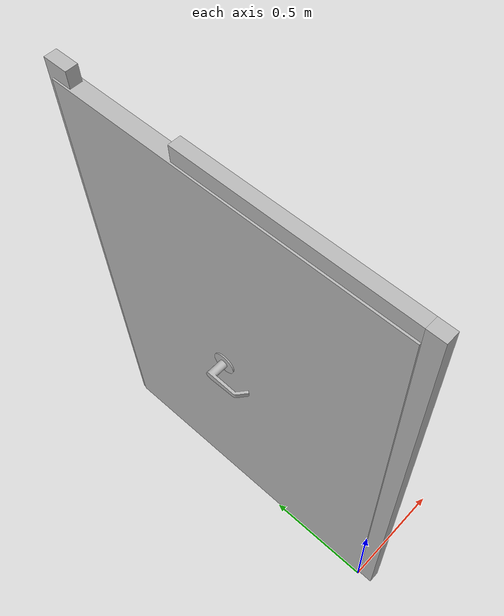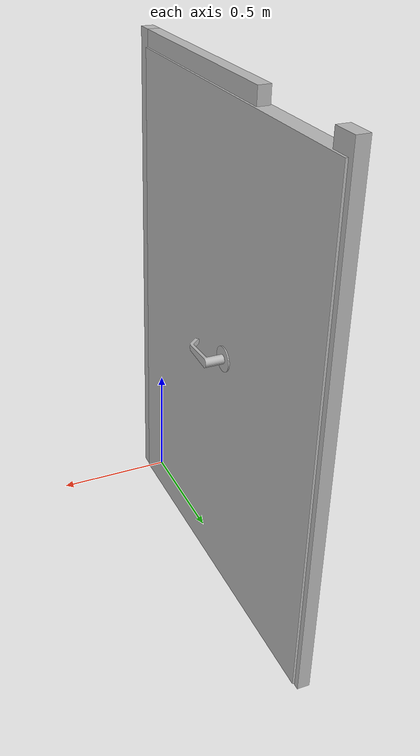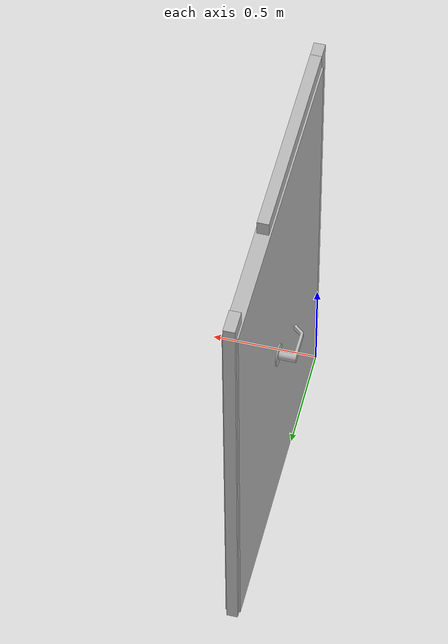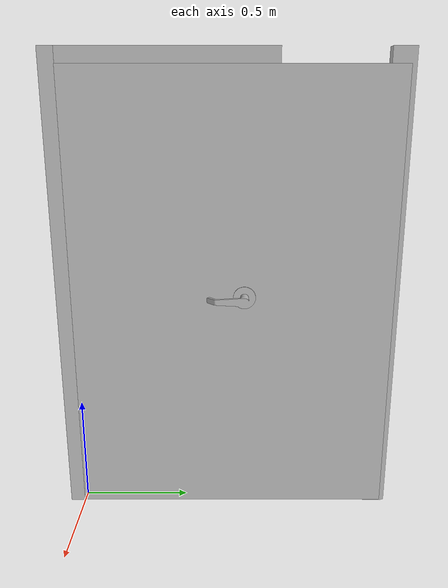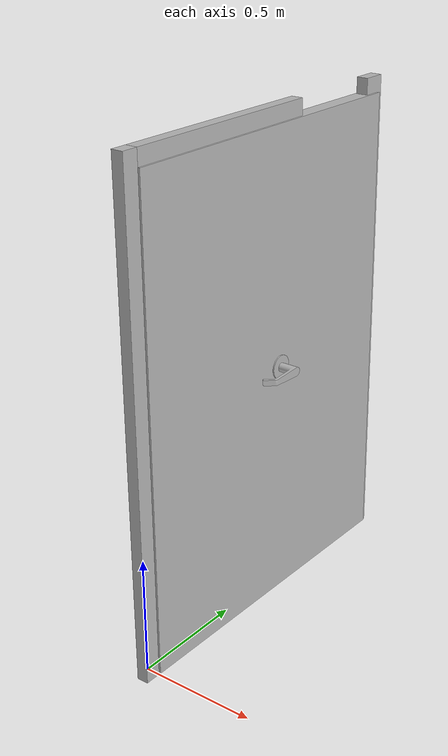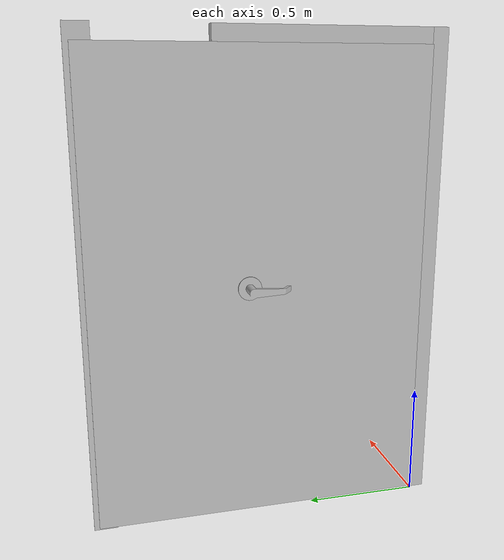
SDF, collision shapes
<?xml version="1.0" ?>
<sdf version="1.4">
  <model name="hinged_door">

    <link name="frame">
      <pose>0.06 -0.0005 0 0 0 0</pose>
      <collision name="collision_1">
        <pose>-0.025145 -0.03429 1.0541 0 0 0</pose>
        <geometry>
          <box>
            <size>0.05029 0.06858 2.10820</size>
          </box>
        </geometry>
      </collision>

      <collision name="collision_2">
        <pose>-0.025145 1.4344 1.0541 0 0 0</pose>
        <geometry>
          <box>
            <size>0.05029 0.10287 2.10820</size>
          </box>
        </geometry>
      </collision>

      <collision name="collision_3">
        <pose>-0.0251450 0.46482 2.07137 0 0 0</pose>
        <geometry>
          <box>
            <size>0.05029 0.92964 0.07366</size>
          </box>
        </geometry>
      </collision>

      <visual name="visual">
	<pose>0 -0.06858 0 0 0 0 </pose>
        <geometry>
          <mesh>
            <scale>1.5 1.5 1</scale>
            <uri>model://hinged_door/meshes/frame.dae</uri>
          </mesh>
        </geometry>
      </visual>
    </link>

    <link name="door">
      <pose>-0.0 0.000 2.040 3.14159 0 1.57</pose>
      <inertial>
        <mass>70</mass>
        <pose>0.4569 0.0349 1.016 0 0 0</pose>
        <inertia>
          <ixx>1</ixx>
          <ixy>0.0004</ixy>
          <ixz>0.0000</ixz>
          <iyy>1</iyy>
          <iyz>0.0000</iyz>
          <izz>1</izz>
        </inertia>
      </inertial>
      <collision name="collision">
        <pose>0.7310 0.0349 1.016 0 0 0</pose>
        <geometry>
          <box>
            <size>1.4630 0.066675 2.032</size>
          </box>
        </geometry>
      </collision>

      <visual name="visual">
	<pose>0 -0.06858 0 0 0 0</pose>
        <geometry>
          <mesh>
            <scale>1.6 1 1</scale>
            <uri>model://hinged_door/meshes/door.dae</uri>
          </mesh>
        </geometry>
      </visual>
    </link>

    <link name="handles">
      <pose>0.0 0.8 1.05 0 3.14 1.57</pose>
      <collision name="handle1_collision">
        <pose>0.015 -0.015 0 -1.57 0 0</pose>
        <geometry>
          <mesh>
            <uri>model://door_handle/meshes/handle.dae</uri>
          </mesh>
        </geometry>
      </collision>

      <visual name="handle1_visual">
        <pose>0.015 -0.015 0 -1.57 0 0</pose>
        <geometry>
          <mesh>
            <uri>model://door_handle/meshes/handle.dae</uri>
          </mesh>
        </geometry>
      </visual>

      <collision name="handle2_collision">
        <pose>0.015 -0.055 0 1.57 0 0</pose>
        <geometry>
          <mesh>
            <uri>model://door_handle/meshes/handle.dae</uri>
          </mesh>
        </geometry>
      </collision>

      <visual name="handle2_visual">
        <pose>0.015 -0.055 0 1.57 0 0</pose>
        <geometry>
          <mesh>
            <uri>model://door_handle/meshes/handle.dae</uri>
          </mesh>
        </geometry>
      </visual>

    </link>

    <joint name="handle" type="revolute">
      <parent>door</parent>
      <child>handles</child>
      <pose>0.015 0 0 0 0 0</pose>
      <axis>
        <xyz>1 0 0</xyz>
        <limit>
          <lower>0</lower>
          <upper>1.58</upper>
        </limit>
        <dynamics>
          <damping>1.0</damping>
          <friction>10 </friction>
        </dynamics>
      </axis>
      <physics>
        <ode>
          <cfm_damping>1</cfm_damping>
        </ode>
      </physics>
    </joint>

    <joint name="hinge" type="revolute">
      <parent>frame</parent>
      <child>door</child>
      <axis>
        <xyz>0 0 1</xyz>
        <limit>
          <lower>0</lower>
          <upper>1.58</upper>
        </limit>
        <dynamics>
          <damping>100.0</damping>
          <friction>100.0 </friction>
        </dynamics>
      </axis>
      <physics>
        <ode>
          <cfm_damping>1</cfm_damping>
        </ode>
      </physics>
    </joint>

    <joint name="world_joint" type="revolute">
      <child>frame</child>
      <parent>world</parent>
      <axis>
        <limit>
          <lower>0</lower>
          <upper>0</upper>
        </limit>
        <xyz>0 1 0</xyz>
        <dynamics>
          <damping>1.0</damping>
        </dynamics>
      </axis>
      <physics>
        <ode>
          <cfm_damping>1</cfm_damping>
        </ode>
      </physics>
    </joint>

  </model>
</sdf>
